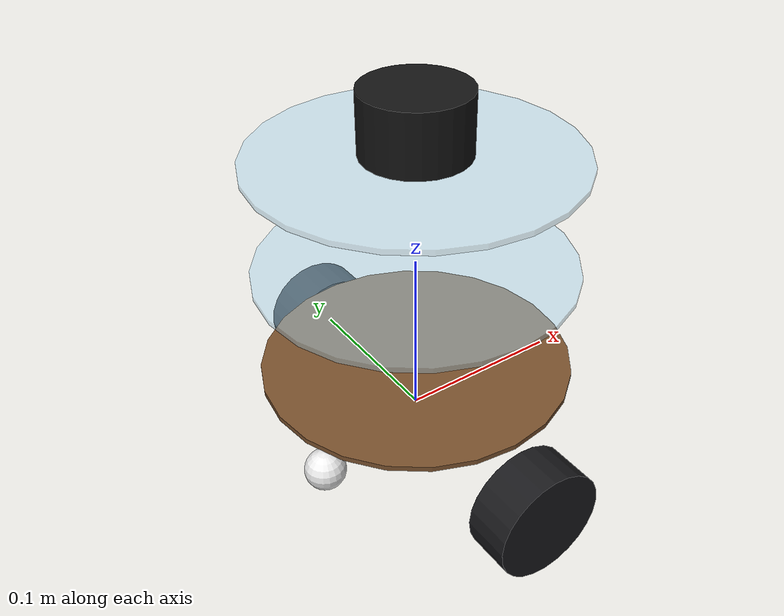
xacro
<?xml version="1.0"?>
<robot xmlns:xacro="http://www.ros.org/wiki/xacro" name="amr_robot">
  <xacro:arg name="use_gazebo" default="false"/>

  <!-- Kích thước hai bánh chủ động và vị trí trục bánh. -->
  <xacro:property name="wheel_radius" value="0.0325"/>
  <xacro:property name="wheel_width" value="0.027"/>
  <xacro:property name="wheel_separation" value="0.215"/>
  <xacro:property name="axle_height" value="0.0325"/>   #

  <!-- Kích thước các tấm khung tròn. -->
  <xacro:property name="plate_thickness" value="0.003"/>

  <!-- Kích thước và vị trí hai bánh caster theo trục X. -->
  <xacro:property name="caster_radius" value="0.0125"/>
  <xacro:property name="front_caster_x" value="0.065"/>
  <xacro:property name="rear_caster_x" value="-0.065"/>
  <xacro:property name="caster_y" value="0.0"/>

  <!-- Vị trí frame laser được tính từ base_link đến mặt phẳng quét LiDAR. -->
  <xacro:property name="laser_x" value="0.0"/>
  <xacro:property name="laser_y" value="0.0"/>
  <xacro:property name="laser_z" value="0.200"/>

  <!-- MPU6050 position relative to base_link; IMU and robot axes are aligned. -->
  <xacro:property name="imu_x" value="0.0"/>
  <xacro:property name="imu_y" value="0.0"/>
  <xacro:property name="imu_z" value="0.050"/>

  <!-- Kích thước gần đúng của vỏ LiDAR A1M8. -->
  <xacro:property name="lidar_radius" value="0.030"/>
  <xacro:property name="lidar_height" value="0.035"/>

  <!-- Kích thước bao ngoài đã đo của toàn bộ robot. -->
  <xacro:property name="overall_height" value="0.250"/>
  <!--
    Chiều dài đã đo là 0.180 m và chiều rộng đã đo là 0.240 m.
    Theo kích thước hai bánh, chiều rộng tính được là 0.242 m.
    Sai lệch 0.002 m có thể đến từ sai số khi đo thực tế.
  -->
  <xacro:property name="overall_length" value="0.180"/>
  <xacro:property name="overall_width_measured" value="0.240"/>

  <!-- Ba tấm khung được giả sử có cùng đường kính 0.180 m và cùng tâm. -->
  <xacro:property name="plate_diameter" value="0.180"/>

  <!-- Tham số khối lượng chỉ phục vụ mô phỏng động lực học trong Gazebo. -->
  <xacro:property name="plate_mass" value="0.45"/>
  <xacro:property name="wheel_mass" value="0.08"/>
  <xacro:property name="caster_mass" value="0.02"/>
  <xacro:property name="lidar_mass" value="0.15"/>

  <xacro:macro name="cylinder_inertial" params="mass radius length">
    <inertial>
      <mass value="${mass}"/>
      <inertia
        ixx="${mass * (3.0 * radius * radius + length * length) / 12.0}"
        ixy="0.0" ixz="0.0"
        iyy="${mass * (3.0 * radius * radius + length * length) / 12.0}"
        iyz="0.0"
        izz="${mass * radius * radius / 2.0}"/>
    </inertial>
  </xacro:macro>

  <xacro:macro name="sphere_inertial" params="mass radius">
    <inertial>
      <mass value="${mass}"/>
      <inertia
        ixx="${2.0 * mass * radius * radius / 5.0}"
        ixy="0.0" ixz="0.0"
        iyy="${2.0 * mass * radius * radius / 5.0}"
        iyz="0.0"
        izz="${2.0 * mass * radius * radius / 5.0}"/>
    </inertial>
  </xacro:macro>

  <!-- Độ cao mặt trên của từng tấm so với mặt đất: 67, 132 và 197 mm. -->
  <xacro:property name="plate1_top" value="0.067"/>
  <xacro:property name="plate2_top" value="0.132"/>
  <xacro:property name="plate3_top" value="0.197"/>

  <!-- Màu dùng để hiển thị các bộ phận của robot trong RViz. -->
  <material name="dark_rubber"><color rgba="0.10 0.10 0.11 1"/></material>
  <material name="lower_brown"><color rgba="0.48 0.32 0.18 1"/></material>
  <material name="acrylic"><color rgba="0.65 0.85 0.96 0.45"/></material>
  <material name="caster_white"><color rgba="0.92 0.92 0.92 1"/></material>
  <material name="lidar_black"><color rgba="0.08 0.08 0.08 1"/></material>

  <!-- Link gốc của robot, đặt tại trung điểm giữa hai bánh chủ động. -->
  <link name="base_link"/>

  <!-- Macro tạo một tấm khung tròn và gắn cố định tấm đó vào base_link. -->
  <xacro:macro name="make_plate" params="name top_height material_name">
    <link name="${name}">
      <visual>
        <geometry>
          <cylinder radius="${plate_diameter/2.0}" length="${plate_thickness}"/>
        </geometry>
        <material name="${material_name}"/>
      </visual>
      <collision>
        <geometry>
          <cylinder radius="${plate_diameter/2.0}" length="${plate_thickness}"/>
        </geometry>
      </collision>
      <xacro:cylinder_inertial mass="${plate_mass}" radius="${plate_diameter/2.0}" length="${plate_thickness}"/>
    </link>
    <joint name="${name}_joint" type="fixed">
      <parent link="base_link"/>
      <child link="${name}"/>
      <origin xyz="0 0 ${top_height-plate_thickness/2.0-axle_height}" rpy="0 0 0"/>
    </joint>
  </xacro:macro>
  <xacro:make_plate name="lower_plate" top_height="${plate1_top}" material_name="lower_brown"/>
  <xacro:make_plate name="middle_plate" top_height="${plate2_top}" material_name="acrylic"/>
  <xacro:make_plate name="upper_plate" top_height="${plate3_top}" material_name="acrylic"/>

  <!-- Macro tạo một bánh chủ động ở bên trái hoặc bên phải robot. -->
  <xacro:macro name="make_drive_wheel" params="name y_position">
    <link name="${name}">
      <visual>
        <geometry>
          <cylinder radius="${wheel_radius}" length="${wheel_width}"/>
        </geometry>
        <material name="dark_rubber"/>
      </visual>
      <collision>
        <geometry>
          <cylinder radius="${wheel_radius}" length="${wheel_width}"/>
        </geometry>
      </collision>
      <xacro:cylinder_inertial mass="${wheel_mass}" radius="${wheel_radius}" length="${wheel_width}"/>
    </link>
    <joint name="${name}_joint" type="continuous">
      <parent link="base_link"/>
      <child link="${name}"/>
      <!-- Xoay trục Z của hình trụ sang trục Y của robot để bánh đứng đúng hướng. -->
      <origin xyz="0 ${y_position} 0" rpy="${pi/2.0} 0 0"/>
      <!-- Bánh quay quanh trục Z cục bộ, tương ứng với trục Y của robot. -->
      <axis xyz="0 0 1"/>
    </joint>
  </xacro:macro>
  <xacro:make_drive_wheel name="left_wheel" y_position="${wheel_separation/2.0}"/>
  <xacro:make_drive_wheel name="right_wheel" y_position="${-wheel_separation/2.0}"/>

  <!-- Bánh caster trước, được mô hình hóa đơn giản bằng hình cầu. -->
  <link name="front_caster_link">
    <visual>
      <geometry><sphere radius="${caster_radius}"/></geometry>
      <material name="caster_white"/>
    </visual>
    <collision>
      <geometry><sphere radius="${caster_radius}"/></geometry>
    </collision>
    <xacro:sphere_inertial mass="${caster_mass}" radius="${caster_radius}"/>
  </link>
  <joint name="front_caster_joint" type="fixed">
    <parent link="base_link"/>
    <child link="front_caster_link"/>
    <!-- Tâm hình cầu cao hơn mặt đất đúng bằng bán kính caster. -->
    <origin xyz="${front_caster_x} ${caster_y} ${caster_radius-axle_height}" rpy="0 0 0"/>
  </joint>

  <!-- Bánh caster sau, đặt đối xứng với caster trước qua tâm robot. -->
  <link name="rear_caster_link">
    <visual>
      <geometry><sphere radius="${caster_radius}"/></geometry>
      <material name="caster_white"/>
    </visual>
    <collision>
      <geometry><sphere radius="${caster_radius}"/></geometry>
    </collision>
    <xacro:sphere_inertial mass="${caster_mass}" radius="${caster_radius}"/>
  </link>
  <joint name="rear_caster_joint" type="fixed">
    <parent link="base_link"/>
    <child link="rear_caster_link"/>
    <!-- Tâm hình cầu cao hơn mặt đất đúng bằng bán kính caster. -->
    <origin xyz="${rear_caster_x} ${caster_y} ${caster_radius-axle_height}" rpy="0 0 0"/>
  </joint>

  <!--
    Frame laser nằm tại mặt phẳng quét của LiDAR.
    Với cấu hình hiện tại, mặt phẳng quét cao 232.5 mm so với mặt đất.
  -->
  <link name="laser">
    <visual>
      <!-- Đặt phần thân LiDAR nằm bên dưới mặt phẳng quét. -->
      <origin xyz="0 0 ${-lidar_height/2.0}" rpy="0 0 0"/>
      <geometry>
        <cylinder radius="${lidar_radius}" length="${lidar_height}"/>
      </geometry>
      <material name="lidar_black"/>
    </visual>
    <collision>
      <origin xyz="0 0 ${-lidar_height/2.0}" rpy="0 0 0"/>
      <geometry>
        <cylinder radius="${lidar_radius}" length="${lidar_height}"/>
      </geometry>
    </collision>
    <xacro:cylinder_inertial mass="${lidar_mass}" radius="${lidar_radius}" length="${lidar_height}"/>
  </link>
  <joint name="laser_joint" type="fixed">
    <parent link="base_link"/>
    <child link="laser"/>
    <origin xyz="${laser_x} ${laser_y} ${laser_z}" rpy="0 0 0"/>
  </joint>

  <!-- MPU6050 axes: +X forward, +Y left, +Z up -->
  <link name="imu_link"/>
  <joint name="imu_joint" type="fixed">
    <parent link="base_link"/>
    <child link="imu_link"/>
    <origin xyz="${imu_x} ${imu_y} ${imu_z}" rpy="0 0 0"/>
  </joint>

  <!-- Các plugin chỉ được nạp khi amr_simulation gọi xacro với use_gazebo:=true. -->
  <xacro:if value="$(arg use_gazebo)">
    <gazebo reference="left_wheel">
      <mu1>1.0</mu1>
      <mu2>1.0</mu2>
    </gazebo>
    <gazebo reference="right_wheel">
      <mu1>1.0</mu1>
      <mu2>1.0</mu2>
    </gazebo>
    <gazebo reference="front_caster_link">
      <mu1>0.01</mu1>
      <mu2>0.01</mu2>
    </gazebo>
    <gazebo reference="rear_caster_link">
      <mu1>0.01</mu1>
      <mu2>0.01</mu2>
    </gazebo>

    <gazebo>
      <plugin name="amr_diff_drive" filename="libgazebo_ros_diff_drive.so">
        <ros>
          <namespace>/</namespace>
        </ros>
        <update_rate>20.0</update_rate>
        <left_joint>left_wheel_joint</left_joint>
        <right_joint>right_wheel_joint</right_joint>
        <wheel_separation>${wheel_separation}</wheel_separation>
        <wheel_diameter>${2.0 * wheel_radius}</wheel_diameter>
        <max_wheel_torque>2.0</max_wheel_torque>
        <max_wheel_acceleration>1.0</max_wheel_acceleration>
        <!-- 0 = odometry tích phân từ chuyển động bánh xe, gần với robot thật hơn ground truth. -->
        <odometry_source>0</odometry_source>
        <odometry_frame>odom</odometry_frame>
        <robot_base_frame>base_link</robot_base_frame>
        <publish_odom>true</publish_odom>
        <publish_odom_tf>true</publish_odom_tf>
        <publish_wheel_tf>false</publish_wheel_tf>
      </plugin>

      <plugin name="amr_joint_state_publisher" filename="libgazebo_ros_joint_state_publisher.so">
        <ros>
          <namespace>/</namespace>
        </ros>
        <update_rate>20.0</update_rate>
        <joint_name>left_wheel_joint</joint_name>
        <joint_name>right_wheel_joint</joint_name>
      </plugin>
    </gazebo>

    <gazebo reference="laser">
      <sensor name="amr_lidar" type="ray">
        <always_on>true</always_on>
        <visualize>true</visualize>
        <update_rate>10.0</update_rate>
        <ray>
          <scan>
            <horizontal>
              <samples>360</samples>
              <resolution>1</resolution>
              <min_angle>-${pi}</min_angle>
              <max_angle>${pi}</max_angle>
            </horizontal>
          </scan>
          <range>
            <min>0.15</min>
            <max>8.0</max>
            <resolution>0.01</resolution>
          </range>
          <noise>
            <type>gaussian</type>
            <mean>0.0</mean>
            <stddev>0.01</stddev>
          </noise>
        </ray>
        <plugin name="amr_lidar_plugin" filename="libgazebo_ros_ray_sensor.so">
          <ros>
            <remapping>~/out:=scan</remapping>
          </ros>
          <output_type>sensor_msgs/LaserScan</output_type>
          <frame_name>laser</frame_name>
        </plugin>
      </sensor>
    </gazebo>
  </xacro:if>
</robot>
